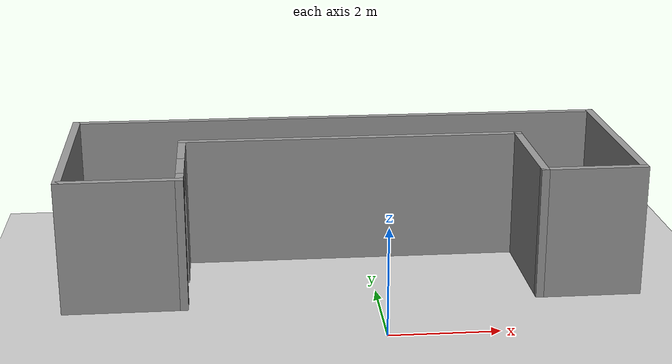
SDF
<sdf version="1.6">
 <world name="default">
  <light name="sun" type="directional">
   <pose>0 0 10 0 -0 0</pose>
   <diffuse>0.8 0.8 0.8 1</diffuse>
   <specular>0.1 0.1 0.1 1</specular>
   <attenuation>
    <range>1000</range>
    <constant>0.9</constant>
    <linear>0.01</linear>
    <quadratic>0.001</quadratic>
   </attenuation>
   <direction>-0.5 0.5 -1</direction>
  </light>
  <model name="ground_plane">
   <static>1</static>
   <link name="link">
    <collision name="collision">
     <geometry><plane><normal>0 0 1</normal><size>100 100</size></plane></geometry>
     <surface><friction><ode><mu>100</mu><mu2>50</mu2></ode></friction></surface>
    </collision>
    <visual name="visual">
     <cast_shadows>0</cast_shadows>
     <geometry><plane><normal>0 0 1</normal><size>100 100</size></plane></geometry>
     <material>
      <script><uri>file://media/materials/scripts/gazebo.material</uri><name>Gazebo/Grey</name></script>
     </material>
    </visual>
   </link>
  </model>
  <gravity>0 0 -9.8</gravity>
  <magnetic_field>6e-06 2.3e-05 -4.2e-05</magnetic_field>
  <atmosphere type="adiabatic"/>
  <physics name="default_physics" default="0" type="ode">
   <max_step_size>0.001</max_step_size>
   <real_time_factor>1</real_time_factor>
   <real_time_update_rate>1000</real_time_update_rate>
  </physics>
  <scene><ambient>0.4 0.4 0.4 1</ambient><background>0.7 0.7 0.7 1</background><shadows>1</shadows></scene>
  <spherical_coordinates>
   <surface_model>EARTH_WGS84</surface_model>
   <latitude_deg>0</latitude_deg>
   <longitude_deg>0</longitude_deg>
   <elevation>0</elevation>
   <heading_deg>0</heading_deg>
  </spherical_coordinates>
  <model name="new_c">
   <pose>-0.420316 3.42378 0 0 -0 0</pose>
   <link name="Wall_0">
    <collision name="Wall_0_Collision">
     <geometry><box><size>4 0.15 2.5</size></box></geometry>
     <pose>0 0 1.25 0 -0 0</pose>
    </collision>
    <visual name="Wall_0_Visual">
     <pose>0 0 1.25 0 -0 0</pose>
     <geometry><box><size>4 0.15 2.5</size></box></geometry>
     <material>
      <script><uri>file://media/materials/scripts/gazebo.material</uri><name>Gazebo/Grey</name></script>
      <ambient>1 1 1 1</ambient>
     </material>
    </visual>
    <pose>-5.3 0 0 0 -0 1.5708</pose>
   </link>
   <link name="Wall_1">
    <collision name="Wall_1_Collision">
     <geometry><box><size>10.75 0.15 2.5</size></box></geometry>
     <pose>0 0 1.25 0 -0 0</pose>
    </collision>
    <visual name="Wall_1_Visual">
     <pose>0 0 1.25 0 -0 0</pose>
     <geometry><box><size>10.75 0.15 2.5</size></box></geometry>
     <material>
      <script><uri>file://media/materials/scripts/gazebo.material</uri><name>Gazebo/Grey</name></script>
      <ambient>1 1 1 1</ambient>
     </material>
    </visual>
    <pose>0 1.925 0 0 -0 0</pose>
   </link>
   <link name="Wall_2">
    <collision name="Wall_2_Collision">
     <geometry><box><size>4 0.15 2.5</size></box></geometry>
     <pose>0 0 1.25 0 -0 0</pose>
    </collision>
    <visual name="Wall_2_Visual">
     <pose>0 0 1.25 0 -0 0</pose>
     <geometry><box><size>4 0.15 2.5</size></box></geometry>
     <material>
      <script><uri>file://media/materials/scripts/gazebo.material</uri><name>Gazebo/Grey</name></script>
      <ambient>1 1 1 1</ambient>
     </material>
    </visual>
    <pose>5.3 0 0 0 0 -1.5708</pose>
   </link>
   <link name="Wall_3">
    <collision name="Wall_3_Collision">
     <geometry><box><size>2 0.15 2.5</size></box></geometry>
     <pose>0 0 1.25 0 -0 0</pose>
    </collision>
    <visual name="Wall_3_Visual">
     <pose>0 0 1.25 0 -0 0</pose>
     <geometry><box><size>2 0.15 2.5</size></box></geometry>
     <material>
      <script><uri>file://media/materials/scripts/gazebo.material</uri><name>Gazebo/Grey</name></script>
      <ambient>1 1 1 1</ambient>
     </material>
    </visual>
    <pose>4.375 -1.925 0 0 -0 3.14159</pose>
   </link>
   <link name="Wall_4">
    <collision name="Wall_4_Collision">
     <geometry><box><size>2.5 0.15 2.5</size></box></geometry>
     <pose>0 0 1.25 0 -0 0</pose>
    </collision>
    <visual name="Wall_4_Visual">
     <pose>0 0 1.25 0 -0 0</pose>
     <geometry><box><size>2.5 0.15 2.5</size></box></geometry>
     <material>
      <script><uri>file://media/materials/scripts/gazebo.material</uri><name>Gazebo/Grey</name></script>
      <ambient>1 1 1 1</ambient>
     </material>
    </visual>
    <pose>3.45 -0.75 0 0 -0 1.5708</pose>
   </link>
   <link name="Wall_5">
    <collision name="Wall_5_Collision">
     <geometry><box><size>6.75 0.15 2.5</size></box></geometry>
     <pose>0 0 1.25 0 -0 0</pose>
    </collision>
    <visual name="Wall_5_Visual">
     <pose>0 0 1.25 0 -0 0</pose>
     <geometry><box><size>6.75 0.15 2.5</size></box></geometry>
     <material>
      <script><uri>file://media/materials/scripts/gazebo.material</uri><name>Gazebo/Grey</name></script>
      <ambient>1 1 1 1</ambient>
     </material>
    </visual>
    <pose>0.15 0.425 0 0 -0 3.14159</pose>
   </link>
   <link name="Wall_6">
    <pose>-3.15 -0.75 0 0 0 -1.5708</pose>
    <visual name="Wall_6_Visual_0">
     <pose>-0.657263 0 1.25 0 -0 0</pose>
     <geometry><box><size>1.18547 0.15 2.5</size></box></geometry>
     <material>
      <script><uri>file://media/materials/scripts/gazebo.material</uri><name>Gazebo/Grey</name></script>
      <ambient>1 1 1 1</ambient>
     </material>
    </visual>
    <collision name="Wall_6_Collision_0">
     <geometry><box><size>1.18547 0.15 2.5</size></box></geometry>
     <pose>-0.657263 0 1.25 0 -0 0</pose>
    </collision>
    <visual name="Wall_6_Visual_1">
     <pose>1.04274 0 1.25 0 -0 0</pose>
     <geometry><box><size>0.414526 0.15 2.5</size></box></geometry>
     <material>
      <script><uri>file://media/materials/scripts/gazebo.material</uri><name>Gazebo/Grey</name></script>
      <ambient>1 1 1 1</ambient>
     </material>
    </visual>
    <collision name="Wall_6_Collision_1">
     <geometry><box><size>0.414526 0.15 2.5</size></box></geometry>
     <pose>1.04274 0 1.25 0 -0 0</pose>
    </collision>
    <visual name="Wall_6_Visual_2">
     <pose>0.385474 0 2.25 0 -0 0</pose>
     <geometry><box><size>0.9 0.15 0.5</size></box></geometry>
     <material>
      <script><uri>file://media/materials/scripts/gazebo.material</uri><name>Gazebo/Grey</name></script>
      <ambient>1 1 1 1</ambient>
     </material>
    </visual>
    <collision name="Wall_6_Collision_2">
     <geometry><box><size>0.9 0.15 0.5</size></box></geometry>
     <pose>0.385474 0 2.25 0 -0 0</pose>
    </collision>
   </link>
   <link name="Wall_7">
    <collision name="Wall_7_Collision">
     <geometry><box><size>2.3 0.15 2.5</size></box></geometry>
     <pose>0 0 1.25 0 -0 0</pose>
    </collision>
    <visual name="Wall_7_Visual">
     <pose>0 0 1.25 0 -0 0</pose>
     <geometry><box><size>2.3 0.15 2.5</size></box></geometry>
     <material>
      <script><uri>file://media/materials/scripts/gazebo.material</uri><name>Gazebo/Grey</name></script>
      <ambient>1 1 1 1</ambient>
     </material>
    </visual>
    <pose>-4.225 -1.925 0 0 0 -3.14159</pose>
   </link>
   <static>1</static>
  </model>
 </world>
</sdf>
